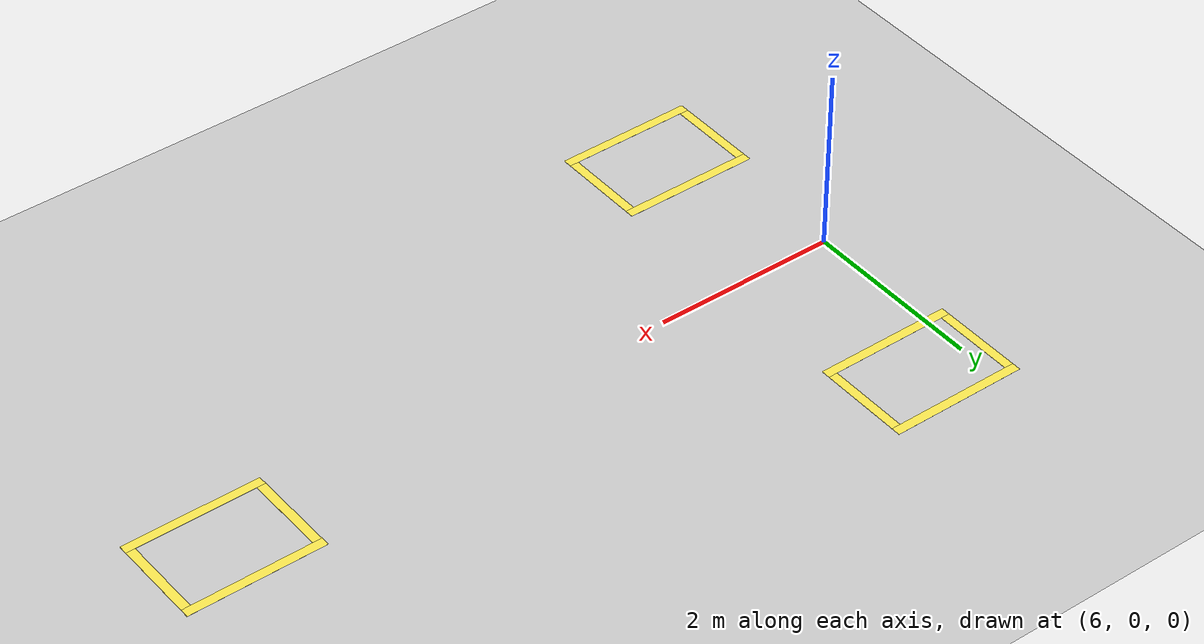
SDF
<sdf version="1.7">
 <world name="default">
  <model name="ground_plane">
   <static>1</static>
   <link name="link">
    <collision name="collision">
     <geometry><plane><normal>0 0 1</normal><size>100 100</size></plane></geometry>
     <surface>
      <contact><collide_bitmask>65535</collide_bitmask></contact>
      <friction><ode><mu>100</mu><mu2>50</mu2></ode></friction>
     </surface>
    </collision>
    <visual name="visual">
     <cast_shadows>0</cast_shadows>
     <geometry><plane><normal>0 0 1</normal><size>100 100</size></plane></geometry>
     <material>
      <script><uri>file://media/materials/scripts/gazebo.material</uri><name>Gazebo/Grey</name></script>
     </material>
    </visual>
   </link>
  </model>
  <model name="strip">
   <link name="link_0">
    <inertial>
     <mass>1</mass>
     <inertia>
      <ixx>0.166667</ixx>
      <ixy>0</ixy>
      <ixz>0</ixz>
      <iyy>0.166667</iyy>
      <iyz>0</iyz>
      <izz>0.166667</izz>
     </inertia>
    </inertial>
    <pose>0 0.5 0 0 -0 0</pose>
    <visual name="visual">
     <geometry><box><size>1.5 0.1 0.001</size></box></geometry>
     <material>
      <lighting>1</lighting>
      <script><uri>file://media/materials/scripts/gazebo.material</uri><name>Gazebo/Grey</name></script>
      <shader type="pixel"><normal_map>__default__</normal_map></shader>
      <ambient>0.988 0.914 0.31 1</ambient>
      <diffuse>0.7 0.7 0.7 1</diffuse>
      <specular>0.01 0.01 0.01 1</specular>
      <emissive>0 0 0 1</emissive>
     </material>
    </visual>
    <collision name="collision">
     <geometry><box><size>1.5 0.1 0.001</size></box></geometry>
     <surface>
      <friction>
       <ode><mu>1</mu><mu2>1</mu2><fdir1>0 0 0</fdir1><slip1>0</slip1><slip2>0</slip2></ode>
       <torsional>
        <coefficient>1</coefficient>
        <patch_radius>0</patch_radius>
        <surface_radius>0</surface_radius>
        <use_patch_radius>1</use_patch_radius>
        <ode><slip>0</slip></ode>
       </torsional>
      </friction>
      <bounce><restitution_coefficient>0</restitution_coefficient><threshold>1e+06</threshold></bounce>
      <contact>
       <collide_without_contact>0</collide_without_contact>
       <collide_without_contact_bitmask>1</collide_without_contact_bitmask>
       <collide_bitmask>1</collide_bitmask>
       <ode>
        <soft_cfm>0</soft_cfm>
        <soft_erp>0.2</soft_erp>
        <kp>1e+13</kp>
        <kd>1</kd>
        <max_vel>0.01</max_vel>
        <min_depth>0</min_depth>
       </ode>
       <bullet>
        <split_impulse>1</split_impulse>
        <split_impulse_penetration_threshold>-0.01</split_impulse_penetration_threshold>
        <soft_cfm>0</soft_cfm>
        <soft_erp>0.2</soft_erp>
        <kp>1e+13</kp>
        <kd>1</kd>
       </bullet>
      </contact>
     </surface>
    </collision>
   </link>
   <link name="link_0_clone">
    <inertial>
     <mass>1</mass>
     <inertia>
      <ixx>0.166667</ixx>
      <ixy>0</ixy>
      <ixz>0</ixz>
      <iyy>0.166667</iyy>
      <iyz>0</iyz>
      <izz>0.166667</izz>
     </inertia>
    </inertial>
    <pose>0 -0.5 0 0 -0 0</pose>
    <visual name="visual">
     <geometry><box><size>1.5 0.1 0.001</size></box></geometry>
     <material>
      <lighting>1</lighting>
      <script><uri>file://media/materials/scripts/gazebo.material</uri><name>Gazebo/Grey</name></script>
      <shader type="pixel"><normal_map>__default__</normal_map></shader>
      <ambient>0.988 0.914 0.31 1</ambient>
      <diffuse>0.7 0.7 0.7 1</diffuse>
      <specular>0.01 0.01 0.01 1</specular>
      <emissive>0 0 0 1</emissive>
     </material>
    </visual>
    <collision name="collision">
     <geometry><box><size>1.5 0.1 0.001</size></box></geometry>
     <surface>
      <friction>
       <ode><mu>1</mu><mu2>1</mu2><fdir1>0 0 0</fdir1><slip1>0</slip1><slip2>0</slip2></ode>
       <torsional>
        <coefficient>1</coefficient>
        <patch_radius>0</patch_radius>
        <surface_radius>0</surface_radius>
        <use_patch_radius>1</use_patch_radius>
        <ode><slip>0</slip></ode>
       </torsional>
      </friction>
      <bounce><restitution_coefficient>0</restitution_coefficient><threshold>1e+06</threshold></bounce>
      <contact>
       <collide_without_contact>0</collide_without_contact>
       <collide_without_contact_bitmask>1</collide_without_contact_bitmask>
       <collide_bitmask>1</collide_bitmask>
       <ode>
        <soft_cfm>0</soft_cfm>
        <soft_erp>0.2</soft_erp>
        <kp>1e+13</kp>
        <kd>1</kd>
        <max_vel>0.01</max_vel>
        <min_depth>0</min_depth>
       </ode>
       <bullet>
        <split_impulse>1</split_impulse>
        <split_impulse_penetration_threshold>-0.01</split_impulse_penetration_threshold>
        <soft_cfm>0</soft_cfm>
        <soft_erp>0.2</soft_erp>
        <kp>1e+13</kp>
        <kd>1</kd>
       </bullet>
      </contact>
     </surface>
    </collision>
   </link>
   <link name="link_1">
    <inertial>
     <mass>1</mass>
     <inertia>
      <ixx>0.166667</ixx>
      <ixy>0</ixy>
      <ixz>0</ixz>
      <iyy>0.166667</iyy>
      <iyz>0</iyz>
      <izz>0.166667</izz>
     </inertia>
    </inertial>
    <pose>0.7 0 0 0 -0 0</pose>
    <visual name="visual">
     <geometry><box><size>0.1 0.9 0.001</size></box></geometry>
     <material>
      <lighting>1</lighting>
      <script><uri>file://media/materials/scripts/gazebo.material</uri><name>Gazebo/Grey</name></script>
      <shader type="pixel"><normal_map>__default__</normal_map></shader>
      <ambient>0.988 0.914 0.31 1</ambient>
      <diffuse>0.7 0.7 0.7 1</diffuse>
      <specular>0.01 0.01 0.01 1</specular>
      <emissive>0 0 0 1</emissive>
     </material>
    </visual>
    <collision name="collision">
     <geometry><box><size>0.1 0.9 0.001</size></box></geometry>
     <surface>
      <friction>
       <ode><mu>1</mu><mu2>1</mu2><fdir1>0 0 0</fdir1><slip1>0</slip1><slip2>0</slip2></ode>
       <torsional>
        <coefficient>1</coefficient>
        <patch_radius>0</patch_radius>
        <surface_radius>0</surface_radius>
        <use_patch_radius>1</use_patch_radius>
        <ode><slip>0</slip></ode>
       </torsional>
      </friction>
      <bounce><restitution_coefficient>0</restitution_coefficient><threshold>1e+06</threshold></bounce>
      <contact>
       <collide_without_contact>0</collide_without_contact>
       <collide_without_contact_bitmask>1</collide_without_contact_bitmask>
       <collide_bitmask>1</collide_bitmask>
       <ode>
        <soft_cfm>0</soft_cfm>
        <soft_erp>0.2</soft_erp>
        <kp>1e+13</kp>
        <kd>1</kd>
        <max_vel>0.01</max_vel>
        <min_depth>0</min_depth>
       </ode>
       <bullet>
        <split_impulse>1</split_impulse>
        <split_impulse_penetration_threshold>-0.01</split_impulse_penetration_threshold>
        <soft_cfm>0</soft_cfm>
        <soft_erp>0.2</soft_erp>
        <kp>1e+13</kp>
        <kd>1</kd>
       </bullet>
      </contact>
     </surface>
    </collision>
   </link>
   <link name="link_1_clone">
    <inertial>
     <mass>1</mass>
     <inertia>
      <ixx>0.166667</ixx>
      <ixy>0</ixy>
      <ixz>0</ixz>
      <iyy>0.166667</iyy>
      <iyz>0</iyz>
      <izz>0.166667</izz>
     </inertia>
    </inertial>
    <pose>-0.7 0 0 0 -0 0</pose>
    <visual name="visual">
     <geometry><box><size>0.1 0.9 0.001</size></box></geometry>
     <material>
      <lighting>1</lighting>
      <script><uri>file://media/materials/scripts/gazebo.material</uri><name>Gazebo/Grey</name></script>
      <shader type="pixel"><normal_map>__default__</normal_map></shader>
      <ambient>0.988 0.914 0.31 1</ambient>
      <diffuse>0.7 0.7 0.7 1</diffuse>
      <specular>0.01 0.01 0.01 1</specular>
      <emissive>0 0 0 1</emissive>
     </material>
    </visual>
    <collision name="collision">
     <geometry><box><size>0.1 0.9 0.001</size></box></geometry>
     <surface>
      <friction>
       <ode><mu>1</mu><mu2>1</mu2><fdir1>0 0 0</fdir1><slip1>0</slip1><slip2>0</slip2></ode>
       <torsional>
        <coefficient>1</coefficient>
        <patch_radius>0</patch_radius>
        <surface_radius>0</surface_radius>
        <use_patch_radius>1</use_patch_radius>
        <ode><slip>0</slip></ode>
       </torsional>
      </friction>
      <bounce><restitution_coefficient>0</restitution_coefficient><threshold>1e+06</threshold></bounce>
      <contact>
       <collide_without_contact>0</collide_without_contact>
       <collide_without_contact_bitmask>1</collide_without_contact_bitmask>
       <collide_bitmask>1</collide_bitmask>
       <ode>
        <soft_cfm>0</soft_cfm>
        <soft_erp>0.2</soft_erp>
        <kp>1e+13</kp>
        <kd>1</kd>
        <max_vel>0.01</max_vel>
        <min_depth>0</min_depth>
       </ode>
       <bullet>
        <split_impulse>1</split_impulse>
        <split_impulse_penetration_threshold>-0.01</split_impulse_penetration_threshold>
        <soft_cfm>0</soft_cfm>
        <soft_erp>0.2</soft_erp>
        <kp>1e+13</kp>
        <kd>1</kd>
       </bullet>
      </contact>
     </surface>
    </collision>
   </link>
   <static>1</static>
   <pose>6.5 2 0 0 -0 0</pose>
  </model>
  <model name="strip_0">
   <link name="link_0">
    <inertial>
     <mass>1</mass>
     <inertia>
      <ixx>0.166667</ixx>
      <ixy>0</ixy>
      <ixz>0</ixz>
      <iyy>0.166667</iyy>
      <iyz>0</iyz>
      <izz>0.166667</izz>
     </inertia>
    </inertial>
    <pose>0 0.5 0 0 -0 0</pose>
    <visual name="visual">
     <geometry><box><size>1.5 0.1 0.001</size></box></geometry>
     <material>
      <lighting>1</lighting>
      <script><uri>file://media/materials/scripts/gazebo.material</uri><name>Gazebo/Grey</name></script>
      <shader type="pixel"><normal_map>__default__</normal_map></shader>
      <ambient>0.988 0.914 0.31 1</ambient>
      <diffuse>0.7 0.7 0.7 1</diffuse>
      <specular>0.01 0.01 0.01 1</specular>
      <emissive>0 0 0 1</emissive>
     </material>
    </visual>
    <collision name="collision">
     <geometry><box><size>1.5 0.1 0.001</size></box></geometry>
     <surface>
      <friction>
       <ode><mu>1</mu><mu2>1</mu2><fdir1>0 0 0</fdir1><slip1>0</slip1><slip2>0</slip2></ode>
       <torsional>
        <coefficient>1</coefficient>
        <patch_radius>0</patch_radius>
        <surface_radius>0</surface_radius>
        <use_patch_radius>1</use_patch_radius>
        <ode><slip>0</slip></ode>
       </torsional>
      </friction>
      <bounce><restitution_coefficient>0</restitution_coefficient><threshold>1e+06</threshold></bounce>
      <contact>
       <collide_without_contact>0</collide_without_contact>
       <collide_without_contact_bitmask>1</collide_without_contact_bitmask>
       <collide_bitmask>1</collide_bitmask>
       <ode>
        <soft_cfm>0</soft_cfm>
        <soft_erp>0.2</soft_erp>
        <kp>1e+13</kp>
        <kd>1</kd>
        <max_vel>0.01</max_vel>
        <min_depth>0</min_depth>
       </ode>
       <bullet>
        <split_impulse>1</split_impulse>
        <split_impulse_penetration_threshold>-0.01</split_impulse_penetration_threshold>
        <soft_cfm>0</soft_cfm>
        <soft_erp>0.2</soft_erp>
        <kp>1e+13</kp>
        <kd>1</kd>
       </bullet>
      </contact>
     </surface>
    </collision>
   </link>
   <link name="link_0_clone">
    <inertial>
     <mass>1</mass>
     <inertia>
      <ixx>0.166667</ixx>
      <ixy>0</ixy>
      <ixz>0</ixz>
      <iyy>0.166667</iyy>
      <iyz>0</iyz>
      <izz>0.166667</izz>
     </inertia>
    </inertial>
    <pose>0 -0.5 0 0 -0 0</pose>
    <visual name="visual">
     <geometry><box><size>1.5 0.1 0.001</size></box></geometry>
     <material>
      <lighting>1</lighting>
      <script><uri>file://media/materials/scripts/gazebo.material</uri><name>Gazebo/Grey</name></script>
      <shader type="pixel"><normal_map>__default__</normal_map></shader>
      <ambient>0.988 0.914 0.31 1</ambient>
      <diffuse>0.7 0.7 0.7 1</diffuse>
      <specular>0.01 0.01 0.01 1</specular>
      <emissive>0 0 0 1</emissive>
     </material>
    </visual>
    <collision name="collision">
     <geometry><box><size>1.5 0.1 0.001</size></box></geometry>
     <surface>
      <friction>
       <ode><mu>1</mu><mu2>1</mu2><fdir1>0 0 0</fdir1><slip1>0</slip1><slip2>0</slip2></ode>
       <torsional>
        <coefficient>1</coefficient>
        <patch_radius>0</patch_radius>
        <surface_radius>0</surface_radius>
        <use_patch_radius>1</use_patch_radius>
        <ode><slip>0</slip></ode>
       </torsional>
      </friction>
      <bounce><restitution_coefficient>0</restitution_coefficient><threshold>1e+06</threshold></bounce>
      <contact>
       <collide_without_contact>0</collide_without_contact>
       <collide_without_contact_bitmask>1</collide_without_contact_bitmask>
       <collide_bitmask>1</collide_bitmask>
       <ode>
        <soft_cfm>0</soft_cfm>
        <soft_erp>0.2</soft_erp>
        <kp>1e+13</kp>
        <kd>1</kd>
        <max_vel>0.01</max_vel>
        <min_depth>0</min_depth>
       </ode>
       <bullet>
        <split_impulse>1</split_impulse>
        <split_impulse_penetration_threshold>-0.01</split_impulse_penetration_threshold>
        <soft_cfm>0</soft_cfm>
        <soft_erp>0.2</soft_erp>
        <kp>1e+13</kp>
        <kd>1</kd>
       </bullet>
      </contact>
     </surface>
    </collision>
   </link>
   <link name="link_1">
    <inertial>
     <mass>1</mass>
     <inertia>
      <ixx>0.166667</ixx>
      <ixy>0</ixy>
      <ixz>0</ixz>
      <iyy>0.166667</iyy>
      <iyz>0</iyz>
      <izz>0.166667</izz>
     </inertia>
    </inertial>
    <pose>0.7 0 0 0 -0 0</pose>
    <visual name="visual">
     <geometry><box><size>0.1 0.9 0.001</size></box></geometry>
     <material>
      <lighting>1</lighting>
      <script><uri>file://media/materials/scripts/gazebo.material</uri><name>Gazebo/Grey</name></script>
      <shader type="pixel"><normal_map>__default__</normal_map></shader>
      <ambient>0.988 0.914 0.31 1</ambient>
      <diffuse>0.7 0.7 0.7 1</diffuse>
      <specular>0.01 0.01 0.01 1</specular>
      <emissive>0 0 0 1</emissive>
     </material>
    </visual>
    <collision name="collision">
     <geometry><box><size>0.1 0.9 0.001</size></box></geometry>
     <surface>
      <friction>
       <ode><mu>1</mu><mu2>1</mu2><fdir1>0 0 0</fdir1><slip1>0</slip1><slip2>0</slip2></ode>
       <torsional>
        <coefficient>1</coefficient>
        <patch_radius>0</patch_radius>
        <surface_radius>0</surface_radius>
        <use_patch_radius>1</use_patch_radius>
        <ode><slip>0</slip></ode>
       </torsional>
      </friction>
      <bounce><restitution_coefficient>0</restitution_coefficient><threshold>1e+06</threshold></bounce>
      <contact>
       <collide_without_contact>0</collide_without_contact>
       <collide_without_contact_bitmask>1</collide_without_contact_bitmask>
       <collide_bitmask>1</collide_bitmask>
       <ode>
        <soft_cfm>0</soft_cfm>
        <soft_erp>0.2</soft_erp>
        <kp>1e+13</kp>
        <kd>1</kd>
        <max_vel>0.01</max_vel>
        <min_depth>0</min_depth>
       </ode>
       <bullet>
        <split_impulse>1</split_impulse>
        <split_impulse_penetration_threshold>-0.01</split_impulse_penetration_threshold>
        <soft_cfm>0</soft_cfm>
        <soft_erp>0.2</soft_erp>
        <kp>1e+13</kp>
        <kd>1</kd>
       </bullet>
      </contact>
     </surface>
    </collision>
   </link>
   <link name="link_1_clone">
    <inertial>
     <mass>1</mass>
     <inertia>
      <ixx>0.166667</ixx>
      <ixy>0</ixy>
      <ixz>0</ixz>
      <iyy>0.166667</iyy>
      <iyz>0</iyz>
      <izz>0.166667</izz>
     </inertia>
    </inertial>
    <pose>-0.7 0 0 0 -0 0</pose>
    <visual name="visual">
     <geometry><box><size>0.1 0.9 0.001</size></box></geometry>
     <material>
      <lighting>1</lighting>
      <script><uri>file://media/materials/scripts/gazebo.material</uri><name>Gazebo/Grey</name></script>
      <shader type="pixel"><normal_map>__default__</normal_map></shader>
      <ambient>0.988 0.914 0.31 1</ambient>
      <diffuse>0.7 0.7 0.7 1</diffuse>
      <specular>0.01 0.01 0.01 1</specular>
      <emissive>0 0 0 1</emissive>
     </material>
    </visual>
    <collision name="collision">
     <geometry><box><size>0.1 0.9 0.001</size></box></geometry>
     <surface>
      <friction>
       <ode><mu>1</mu><mu2>1</mu2><fdir1>0 0 0</fdir1><slip1>0</slip1><slip2>0</slip2></ode>
       <torsional>
        <coefficient>1</coefficient>
        <patch_radius>0</patch_radius>
        <surface_radius>0</surface_radius>
        <use_patch_radius>1</use_patch_radius>
        <ode><slip>0</slip></ode>
       </torsional>
      </friction>
      <bounce><restitution_coefficient>0</restitution_coefficient><threshold>1e+06</threshold></bounce>
      <contact>
       <collide_without_contact>0</collide_without_contact>
       <collide_without_contact_bitmask>1</collide_without_contact_bitmask>
       <collide_bitmask>1</collide_bitmask>
       <ode>
        <soft_cfm>0</soft_cfm>
        <soft_erp>0.2</soft_erp>
        <kp>1e+13</kp>
        <kd>1</kd>
        <max_vel>0.01</max_vel>
        <min_depth>0</min_depth>
       </ode>
       <bullet>
        <split_impulse>1</split_impulse>
        <split_impulse_penetration_threshold>-0.01</split_impulse_penetration_threshold>
        <soft_cfm>0</soft_cfm>
        <soft_erp>0.2</soft_erp>
        <kp>1e+13</kp>
        <kd>1</kd>
       </bullet>
      </contact>
     </surface>
    </collision>
   </link>
   <static>1</static>
   <pose>6.5 -2 0 0 -0 0</pose>
  </model>
  <model name="strip_4">
   <link name="link_0">
    <inertial>
     <mass>1</mass>
     <inertia>
      <ixx>0.166667</ixx>
      <ixy>0</ixy>
      <ixz>0</ixz>
      <iyy>0.166667</iyy>
      <iyz>0</iyz>
      <izz>0.166667</izz>
     </inertia>
    </inertial>
    <pose>0 0.5 0 0 -0 0</pose>
    <visual name="visual">
     <geometry><box><size>1.5 0.1 0.001</size></box></geometry>
     <material>
      <lighting>1</lighting>
      <script><uri>file://media/materials/scripts/gazebo.material</uri><name>Gazebo/Grey</name></script>
      <shader type="pixel"><normal_map>__default__</normal_map></shader>
      <ambient>0.988 0.914 0.31 1</ambient>
      <diffuse>0.7 0.7 0.7 1</diffuse>
      <specular>0.01 0.01 0.01 1</specular>
      <emissive>0 0 0 1</emissive>
     </material>
    </visual>
    <collision name="collision">
     <geometry><box><size>1.5 0.1 0.001</size></box></geometry>
     <surface>
      <friction>
       <ode><mu>1</mu><mu2>1</mu2><fdir1>0 0 0</fdir1><slip1>0</slip1><slip2>0</slip2></ode>
       <torsional>
        <coefficient>1</coefficient>
        <patch_radius>0</patch_radius>
        <surface_radius>0</surface_radius>
        <use_patch_radius>1</use_patch_radius>
        <ode><slip>0</slip></ode>
       </torsional>
      </friction>
      <bounce><restitution_coefficient>0</restitution_coefficient><threshold>1e+06</threshold></bounce>
      <contact>
       <collide_without_contact>0</collide_without_contact>
       <collide_without_contact_bitmask>1</collide_without_contact_bitmask>
       <collide_bitmask>1</collide_bitmask>
       <ode>
        <soft_cfm>0</soft_cfm>
        <soft_erp>0.2</soft_erp>
        <kp>1e+13</kp>
        <kd>1</kd>
        <max_vel>0.01</max_vel>
        <min_depth>0</min_depth>
       </ode>
       <bullet>
        <split_impulse>1</split_impulse>
        <split_impulse_penetration_threshold>-0.01</split_impulse_penetration_threshold>
        <soft_cfm>0</soft_cfm>
        <soft_erp>0.2</soft_erp>
        <kp>1e+13</kp>
        <kd>1</kd>
       </bullet>
      </contact>
     </surface>
    </collision>
   </link>
   <link name="link_0_clone">
    <inertial>
     <mass>1</mass>
     <inertia>
      <ixx>0.166667</ixx>
      <ixy>0</ixy>
      <ixz>0</ixz>
      <iyy>0.166667</iyy>
      <iyz>0</iyz>
      <izz>0.166667</izz>
     </inertia>
    </inertial>
    <pose>0 -0.5 0 0 -0 0</pose>
    <visual name="visual">
     <geometry><box><size>1.5 0.1 0.001</size></box></geometry>
     <material>
      <lighting>1</lighting>
      <script><uri>file://media/materials/scripts/gazebo.material</uri><name>Gazebo/Grey</name></script>
      <shader type="pixel"><normal_map>__default__</normal_map></shader>
      <ambient>0.988 0.914 0.31 1</ambient>
      <diffuse>0.7 0.7 0.7 1</diffuse>
      <specular>0.01 0.01 0.01 1</specular>
      <emissive>0 0 0 1</emissive>
     </material>
    </visual>
    <collision name="collision">
     <geometry><box><size>1.5 0.1 0.001</size></box></geometry>
     <surface>
      <friction>
       <ode><mu>1</mu><mu2>1</mu2><fdir1>0 0 0</fdir1><slip1>0</slip1><slip2>0</slip2></ode>
       <torsional>
        <coefficient>1</coefficient>
        <patch_radius>0</patch_radius>
        <surface_radius>0</surface_radius>
        <use_patch_radius>1</use_patch_radius>
        <ode><slip>0</slip></ode>
       </torsional>
      </friction>
      <bounce><restitution_coefficient>0</restitution_coefficient><threshold>1e+06</threshold></bounce>
      <contact>
       <collide_without_contact>0</collide_without_contact>
       <collide_without_contact_bitmask>1</collide_without_contact_bitmask>
       <collide_bitmask>1</collide_bitmask>
       <ode>
        <soft_cfm>0</soft_cfm>
        <soft_erp>0.2</soft_erp>
        <kp>1e+13</kp>
        <kd>1</kd>
        <max_vel>0.01</max_vel>
        <min_depth>0</min_depth>
       </ode>
       <bullet>
        <split_impulse>1</split_impulse>
        <split_impulse_penetration_threshold>-0.01</split_impulse_penetration_threshold>
        <soft_cfm>0</soft_cfm>
        <soft_erp>0.2</soft_erp>
        <kp>1e+13</kp>
        <kd>1</kd>
       </bullet>
      </contact>
     </surface>
    </collision>
   </link>
   <link name="link_1">
    <inertial>
     <mass>1</mass>
     <inertia>
      <ixx>0.166667</ixx>
      <ixy>0</ixy>
      <ixz>0</ixz>
      <iyy>0.166667</iyy>
      <iyz>0</iyz>
      <izz>0.166667</izz>
     </inertia>
    </inertial>
    <pose>0.7 0 0 0 -0 0</pose>
    <visual name="visual">
     <geometry><box><size>0.1 0.9 0.001</size></box></geometry>
     <material>
      <lighting>1</lighting>
      <script><uri>file://media/materials/scripts/gazebo.material</uri><name>Gazebo/Grey</name></script>
      <shader type="pixel"><normal_map>__default__</normal_map></shader>
      <ambient>0.988 0.914 0.31 1</ambient>
      <diffuse>0.7 0.7 0.7 1</diffuse>
      <specular>0.01 0.01 0.01 1</specular>
      <emissive>0 0 0 1</emissive>
     </material>
    </visual>
    <collision name="collision">
     <geometry><box><size>0.1 0.9 0.001</size></box></geometry>
     <surface>
      <friction>
       <ode><mu>1</mu><mu2>1</mu2><fdir1>0 0 0</fdir1><slip1>0</slip1><slip2>0</slip2></ode>
       <torsional>
        <coefficient>1</coefficient>
        <patch_radius>0</patch_radius>
        <surface_radius>0</surface_radius>
        <use_patch_radius>1</use_patch_radius>
        <ode><slip>0</slip></ode>
       </torsional>
      </friction>
      <bounce><restitution_coefficient>0</restitution_coefficient><threshold>1e+06</threshold></bounce>
      <contact>
       <collide_without_contact>0</collide_without_contact>
       <collide_without_contact_bitmask>1</collide_without_contact_bitmask>
       <collide_bitmask>1</collide_bitmask>
       <ode>
        <soft_cfm>0</soft_cfm>
        <soft_erp>0.2</soft_erp>
        <kp>1e+13</kp>
        <kd>1</kd>
        <max_vel>0.01</max_vel>
        <min_depth>0</min_depth>
       </ode>
       <bullet>
        <split_impulse>1</split_impulse>
        <split_impulse_penetration_threshold>-0.01</split_impulse_penetration_threshold>
        <soft_cfm>0</soft_cfm>
        <soft_erp>0.2</soft_erp>
        <kp>1e+13</kp>
        <kd>1</kd>
       </bullet>
      </contact>
     </surface>
    </collision>
   </link>
   <link name="link_1_clone">
    <inertial>
     <mass>1</mass>
     <inertia>
      <ixx>0.166667</ixx>
      <ixy>0</ixy>
      <ixz>0</ixz>
      <iyy>0.166667</iyy>
      <iyz>0</iyz>
      <izz>0.166667</izz>
     </inertia>
    </inertial>
    <pose>-0.7 0 0 0 -0 0</pose>
    <visual name="visual">
     <geometry><box><size>0.1 0.9 0.001</size></box></geometry>
     <material>
      <lighting>1</lighting>
      <script><uri>file://media/materials/scripts/gazebo.material</uri><name>Gazebo/Grey</name></script>
      <shader type="pixel"><normal_map>__default__</normal_map></shader>
      <ambient>0.988 0.914 0.31 1</ambient>
      <diffuse>0.7 0.7 0.7 1</diffuse>
      <specular>0.01 0.01 0.01 1</specular>
      <emissive>0 0 0 1</emissive>
     </material>
    </visual>
    <collision name="collision">
     <geometry><box><size>0.1 0.9 0.001</size></box></geometry>
     <surface>
      <friction>
       <ode><mu>1</mu><mu2>1</mu2><fdir1>0 0 0</fdir1><slip1>0</slip1><slip2>0</slip2></ode>
       <torsional>
        <coefficient>1</coefficient>
        <patch_radius>0</patch_radius>
        <surface_radius>0</surface_radius>
        <use_patch_radius>1</use_patch_radius>
        <ode><slip>0</slip></ode>
       </torsional>
      </friction>
      <bounce><restitution_coefficient>0</restitution_coefficient><threshold>1e+06</threshold></bounce>
      <contact>
       <collide_without_contact>0</collide_without_contact>
       <collide_without_contact_bitmask>1</collide_without_contact_bitmask>
       <collide_bitmask>1</collide_bitmask>
       <ode>
        <soft_cfm>0</soft_cfm>
        <soft_erp>0.2</soft_erp>
        <kp>1e+13</kp>
        <kd>1</kd>
        <max_vel>0.01</max_vel>
        <min_depth>0</min_depth>
       </ode>
       <bullet>
        <split_impulse>1</split_impulse>
        <split_impulse_penetration_threshold>-0.01</split_impulse_penetration_threshold>
        <soft_cfm>0</soft_cfm>
        <soft_erp>0.2</soft_erp>
        <kp>1e+13</kp>
        <kd>1</kd>
       </bullet>
      </contact>
     </surface>
    </collision>
   </link>
   <static>1</static>
   <pose>13 0 0 0 -0 0</pose>
  </model>
 </world>
</sdf>
